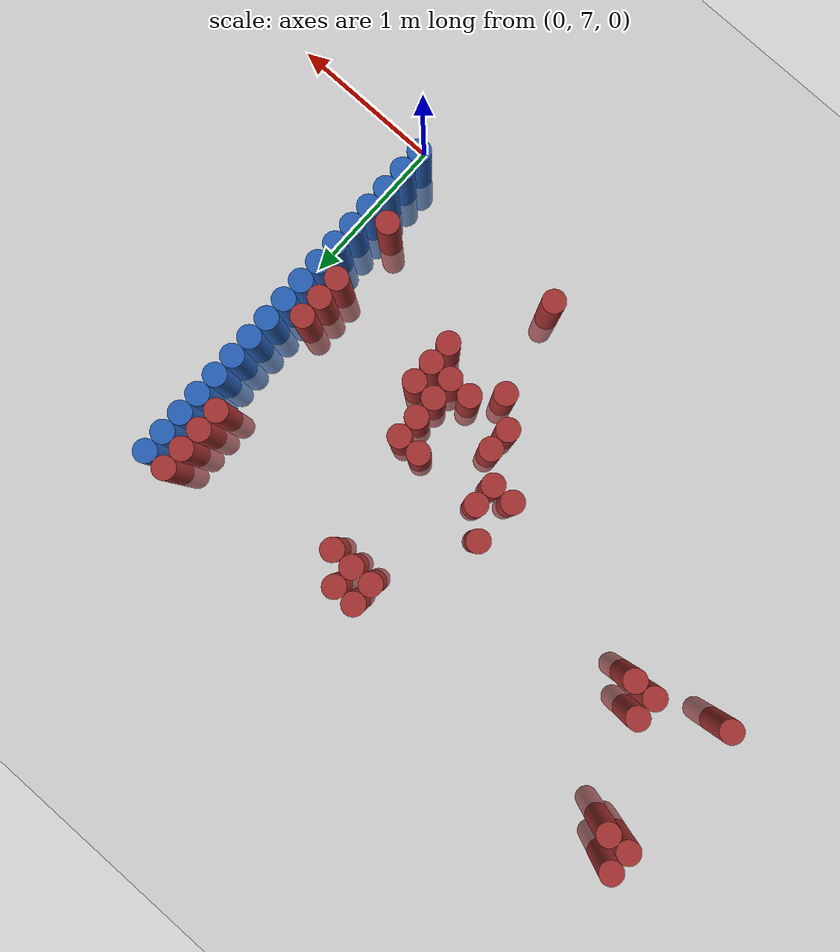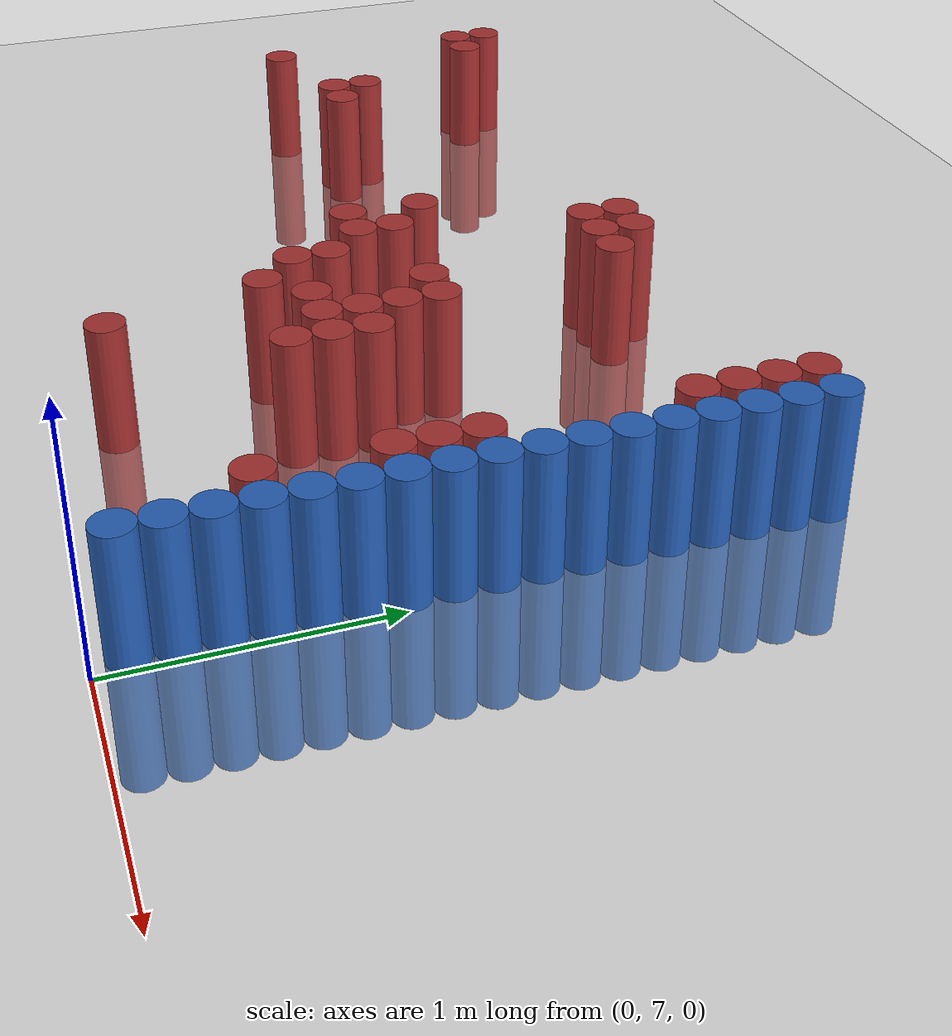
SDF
<sdf version="1.6">
 <world name="default">
  <model name="ground_plane">
   <static>1</static>
   <link name="link">
    <collision name="collision">
     <geometry><plane><normal>0 0 1</normal><size>100 100</size></plane></geometry>
     <surface><friction><ode><mu>100</mu><mu2>50</mu2></ode></friction></surface>
    </collision>
    <visual name="visual">
     <cast_shadows>0</cast_shadows>
     <geometry><plane><normal>0 0 1</normal><size>100 100</size></plane></geometry>
     <material>
      <script><uri>file://media/materials/scripts/gazebo.material</uri><name>Gazebo/Grey</name></script>
     </material>
    </visual>
   </link>
  </model>
  <model name="unit_cylinder_154">
   <static>1</static>
   <pose>-3.675000 8.475000 0.000000 0.000000 0.000000 0.000000</pose>
   <link name="link">
    <inertial>
     <mass>1</mass>
     <inertia><ixx>0.145833</ixx><ixy>0</ixy><ixz>0</ixz><iyy>0.145833</iyy><iyz>0</iyz><izz>0.125</izz></inertia>
    </inertial>
    <collision name="collision">
     <geometry><cylinder><radius>0.075000</radius><length>1</length></cylinder></geometry>
    </collision>
    <visual name="visual">
     <geometry><cylinder><radius>0.075000</radius><length>1</length></cylinder></geometry>
     <material>
      <ambient>0.648000 0.192000 0.192000 1</ambient>
      <diffuse>0.648000 0.192000 0.192000 1</diffuse>
     </material>
     <material>
      <script><name>Gazebo/Grey</name><uri>file://media/materials/scripts/gazebo.material</uri></script>
     </material>
    </visual>
   </link>
  </model>
  <model name="unit_cylinder_155">
   <static>1</static>
   <pose>-3.675000 9.375000 0.000000 0.000000 0.000000 0.000000</pose>
   <link name="link">
    <inertial>
     <mass>1</mass>
     <inertia><ixx>0.145833</ixx><ixy>0</ixy><ixz>0</ixz><iyy>0.145833</iyy><iyz>0</iyz><izz>0.125</izz></inertia>
    </inertial>
    <collision name="collision">
     <geometry><cylinder><radius>0.075000</radius><length>1</length></cylinder></geometry>
    </collision>
    <visual name="visual">
     <geometry><cylinder><radius>0.075000</radius><length>1</length></cylinder></geometry>
     <material>
      <ambient>0.648000 0.192000 0.192000 1</ambient>
      <diffuse>0.648000 0.192000 0.192000 1</diffuse>
     </material>
     <material>
      <script><name>Gazebo/Grey</name><uri>file://media/materials/scripts/gazebo.material</uri></script>
     </material>
    </visual>
   </link>
  </model>
  <model name="unit_cylinder_156">
   <static>1</static>
   <pose>-3.675000 9.525000 0.000000 0.000000 0.000000 0.000000</pose>
   <link name="link">
    <inertial>
     <mass>1</mass>
     <inertia><ixx>0.145833</ixx><ixy>0</ixy><ixz>0</ixz><iyy>0.145833</iyy><iyz>0</iyz><izz>0.125</izz></inertia>
    </inertial>
    <collision name="collision">
     <geometry><cylinder><radius>0.075000</radius><length>1</length></cylinder></geometry>
    </collision>
    <visual name="visual">
     <geometry><cylinder><radius>0.075000</radius><length>1</length></cylinder></geometry>
     <material>
      <ambient>0.648000 0.192000 0.192000 1</ambient>
      <diffuse>0.648000 0.192000 0.192000 1</diffuse>
     </material>
     <material>
      <script><name>Gazebo/Grey</name><uri>file://media/materials/scripts/gazebo.material</uri></script>
     </material>
    </visual>
   </link>
  </model>
  <model name="unit_cylinder_157">
   <static>1</static>
   <pose>-3.525000 9.375000 0.000000 0.000000 0.000000 0.000000</pose>
   <link name="link">
    <inertial>
     <mass>1</mass>
     <inertia><ixx>0.145833</ixx><ixy>0</ixy><ixz>0</ixz><iyy>0.145833</iyy><iyz>0</iyz><izz>0.125</izz></inertia>
    </inertial>
    <collision name="collision">
     <geometry><cylinder><radius>0.075000</radius><length>1</length></cylinder></geometry>
    </collision>
    <visual name="visual">
     <geometry><cylinder><radius>0.075000</radius><length>1</length></cylinder></geometry>
     <material>
      <ambient>0.648000 0.192000 0.192000 1</ambient>
      <diffuse>0.648000 0.192000 0.192000 1</diffuse>
     </material>
     <material>
      <script><name>Gazebo/Grey</name><uri>file://media/materials/scripts/gazebo.material</uri></script>
     </material>
    </visual>
   </link>
  </model>
  <model name="unit_cylinder_159">
   <static>1</static>
   <pose>-3.225000 8.625000 0.000000 0.000000 0.000000 0.000000</pose>
   <link name="link">
    <inertial>
     <mass>1</mass>
     <inertia><ixx>0.145833</ixx><ixy>0</ixy><ixz>0</ixz><iyy>0.145833</iyy><iyz>0</iyz><izz>0.125</izz></inertia>
    </inertial>
    <collision name="collision">
     <geometry><cylinder><radius>0.075000</radius><length>1</length></cylinder></geometry>
    </collision>
    <visual name="visual">
     <geometry><cylinder><radius>0.075000</radius><length>1</length></cylinder></geometry>
     <material>
      <ambient>0.648000 0.192000 0.192000 1</ambient>
      <diffuse>0.648000 0.192000 0.192000 1</diffuse>
     </material>
     <material>
      <script><name>Gazebo/Grey</name><uri>file://media/materials/scripts/gazebo.material</uri></script>
     </material>
    </visual>
   </link>
  </model>
  <model name="unit_cylinder_160">
   <static>1</static>
   <pose>-3.225000 8.775000 0.000000 0.000000 0.000000 0.000000</pose>
   <link name="link">
    <inertial>
     <mass>1</mass>
     <inertia><ixx>0.145833</ixx><ixy>0</ixy><ixz>0</ixz><iyy>0.145833</iyy><iyz>0</iyz><izz>0.125</izz></inertia>
    </inertial>
    <collision name="collision">
     <geometry><cylinder><radius>0.075000</radius><length>1</length></cylinder></geometry>
    </collision>
    <visual name="visual">
     <geometry><cylinder><radius>0.075000</radius><length>1</length></cylinder></geometry>
     <material>
      <ambient>0.648000 0.192000 0.192000 1</ambient>
      <diffuse>0.648000 0.192000 0.192000 1</diffuse>
     </material>
     <material>
      <script><name>Gazebo/Grey</name><uri>file://media/materials/scripts/gazebo.material</uri></script>
     </material>
    </visual>
   </link>
  </model>
  <model name="unit_cylinder_163">
   <static>1</static>
   <pose>-3.075000 8.625000 0.000000 0.000000 0.000000 0.000000</pose>
   <link name="link">
    <inertial>
     <mass>1</mass>
     <inertia><ixx>0.145833</ixx><ixy>0</ixy><ixz>0</ixz><iyy>0.145833</iyy><iyz>0</iyz><izz>0.125</izz></inertia>
    </inertial>
    <collision name="collision">
     <geometry><cylinder><radius>0.075000</radius><length>1</length></cylinder></geometry>
    </collision>
    <visual name="visual">
     <geometry><cylinder><radius>0.075000</radius><length>1</length></cylinder></geometry>
     <material>
      <ambient>0.648000 0.192000 0.192000 1</ambient>
      <diffuse>0.648000 0.192000 0.192000 1</diffuse>
     </material>
     <material>
      <script><name>Gazebo/Grey</name><uri>file://media/materials/scripts/gazebo.material</uri></script>
     </material>
    </visual>
   </link>
  </model>
  <model name="unit_cylinder_178">
   <static>1</static>
   <pose>-1.875000 8.325000 0.000000 0.000000 0.000000 0.000000</pose>
   <link name="link">
    <inertial>
     <mass>1</mass>
     <inertia><ixx>0.145833</ixx><ixy>0</ixy><ixz>0</ixz><iyy>0.145833</iyy><iyz>0</iyz><izz>0.125</izz></inertia>
    </inertial>
    <collision name="collision">
     <geometry><cylinder><radius>0.075000</radius><length>1</length></cylinder></geometry>
    </collision>
    <visual name="visual">
     <geometry><cylinder><radius>0.075000</radius><length>1</length></cylinder></geometry>
     <material>
      <ambient>0.648000 0.192000 0.192000 1</ambient>
      <diffuse>0.648000 0.192000 0.192000 1</diffuse>
     </material>
     <material>
      <script><name>Gazebo/Grey</name><uri>file://media/materials/scripts/gazebo.material</uri></script>
     </material>
    </visual>
   </link>
  </model>
  <model name="unit_cylinder_179">
   <static>1</static>
   <pose>-1.875000 8.625000 0.000000 0.000000 0.000000 0.000000</pose>
   <link name="link">
    <inertial>
     <mass>1</mass>
     <inertia><ixx>0.145833</ixx><ixy>0</ixy><ixz>0</ixz><iyy>0.145833</iyy><iyz>0</iyz><izz>0.125</izz></inertia>
    </inertial>
    <collision name="collision">
     <geometry><cylinder><radius>0.075000</radius><length>1</length></cylinder></geometry>
    </collision>
    <visual name="visual">
     <geometry><cylinder><radius>0.075000</radius><length>1</length></cylinder></geometry>
     <material>
      <ambient>0.648000 0.192000 0.192000 1</ambient>
      <diffuse>0.648000 0.192000 0.192000 1</diffuse>
     </material>
     <material>
      <script><name>Gazebo/Grey</name><uri>file://media/materials/scripts/gazebo.material</uri></script>
     </material>
    </visual>
   </link>
  </model>
  <model name="unit_cylinder_182">
   <static>1</static>
   <pose>-1.725000 8.325000 0.000000 0.000000 0.000000 0.000000</pose>
   <link name="link">
    <inertial>
     <mass>1</mass>
     <inertia><ixx>0.145833</ixx><ixy>0</ixy><ixz>0</ixz><iyy>0.145833</iyy><iyz>0</iyz><izz>0.125</izz></inertia>
    </inertial>
    <collision name="collision">
     <geometry><cylinder><radius>0.075000</radius><length>1</length></cylinder></geometry>
    </collision>
    <visual name="visual">
     <geometry><cylinder><radius>0.075000</radius><length>1</length></cylinder></geometry>
     <material>
      <ambient>0.648000 0.192000 0.192000 1</ambient>
      <diffuse>0.648000 0.192000 0.192000 1</diffuse>
     </material>
     <material>
      <script><name>Gazebo/Grey</name><uri>file://media/materials/scripts/gazebo.material</uri></script>
     </material>
    </visual>
   </link>
  </model>
  <model name="unit_cylinder_183">
   <static>1</static>
   <pose>-1.725000 8.475000 0.000000 0.000000 0.000000 0.000000</pose>
   <link name="link">
    <inertial>
     <mass>1</mass>
     <inertia><ixx>0.145833</ixx><ixy>0</ixy><ixz>0</ixz><iyy>0.145833</iyy><iyz>0</iyz><izz>0.125</izz></inertia>
    </inertial>
    <collision name="collision">
     <geometry><cylinder><radius>0.075000</radius><length>1</length></cylinder></geometry>
    </collision>
    <visual name="visual">
     <geometry><cylinder><radius>0.075000</radius><length>1</length></cylinder></geometry>
     <material>
      <ambient>0.648000 0.192000 0.192000 1</ambient>
      <diffuse>0.648000 0.192000 0.192000 1</diffuse>
     </material>
     <material>
      <script><name>Gazebo/Grey</name><uri>file://media/materials/scripts/gazebo.material</uri></script>
     </material>
    </visual>
   </link>
  </model>
  <model name="unit_cylinder_189">
   <static>1</static>
   <pose>-1.575000 8.025000 0.000000 0.000000 0.000000 0.000000</pose>
   <link name="link">
    <inertial>
     <mass>1</mass>
     <inertia><ixx>0.145833</ixx><ixy>0</ixy><ixz>0</ixz><iyy>0.145833</iyy><iyz>0</iyz><izz>0.125</izz></inertia>
    </inertial>
    <collision name="collision">
     <geometry><cylinder><radius>0.075000</radius><length>1</length></cylinder></geometry>
    </collision>
    <visual name="visual">
     <geometry><cylinder><radius>0.075000</radius><length>1</length></cylinder></geometry>
     <material>
      <ambient>0.648000 0.192000 0.192000 1</ambient>
      <diffuse>0.648000 0.192000 0.192000 1</diffuse>
     </material>
     <material>
      <script><name>Gazebo/Grey</name><uri>file://media/materials/scripts/gazebo.material</uri></script>
     </material>
    </visual>
   </link>
  </model>
  <model name="unit_cylinder_190">
   <static>1</static>
   <pose>-1.575000 8.175000 0.000000 0.000000 0.000000 0.000000</pose>
   <link name="link">
    <inertial>
     <mass>1</mass>
     <inertia><ixx>0.145833</ixx><ixy>0</ixy><ixz>0</ixz><iyy>0.145833</iyy><iyz>0</iyz><izz>0.125</izz></inertia>
    </inertial>
    <collision name="collision">
     <geometry><cylinder><radius>0.075000</radius><length>1</length></cylinder></geometry>
    </collision>
    <visual name="visual">
     <geometry><cylinder><radius>0.075000</radius><length>1</length></cylinder></geometry>
     <material>
      <ambient>0.648000 0.192000 0.192000 1</ambient>
      <diffuse>0.648000 0.192000 0.192000 1</diffuse>
     </material>
     <material>
      <script><name>Gazebo/Grey</name><uri>file://media/materials/scripts/gazebo.material</uri></script>
     </material>
    </visual>
   </link>
  </model>
  <model name="unit_cylinder_191">
   <static>1</static>
   <pose>-1.575000 9.225000 0.000000 0.000000 0.000000 0.000000</pose>
   <link name="link">
    <inertial>
     <mass>1</mass>
     <inertia><ixx>0.145833</ixx><ixy>0</ixy><ixz>0</ixz><iyy>0.145833</iyy><iyz>0</iyz><izz>0.125</izz></inertia>
    </inertial>
    <collision name="collision">
     <geometry><cylinder><radius>0.075000</radius><length>1</length></cylinder></geometry>
    </collision>
    <visual name="visual">
     <geometry><cylinder><radius>0.075000</radius><length>1</length></cylinder></geometry>
     <material>
      <ambient>0.648000 0.192000 0.192000 1</ambient>
      <diffuse>0.648000 0.192000 0.192000 1</diffuse>
     </material>
     <material>
      <script><name>Gazebo/Grey</name><uri>file://media/materials/scripts/gazebo.material</uri></script>
     </material>
    </visual>
   </link>
  </model>
  <model name="unit_cylinder_192">
   <static>1</static>
   <pose>-1.575000 9.375000 0.000000 0.000000 0.000000 0.000000</pose>
   <link name="link">
    <inertial>
     <mass>1</mass>
     <inertia><ixx>0.145833</ixx><ixy>0</ixy><ixz>0</ixz><iyy>0.145833</iyy><iyz>0</iyz><izz>0.125</izz></inertia>
    </inertial>
    <collision name="collision">
     <geometry><cylinder><radius>0.075000</radius><length>1</length></cylinder></geometry>
    </collision>
    <visual name="visual">
     <geometry><cylinder><radius>0.075000</radius><length>1</length></cylinder></geometry>
     <material>
      <ambient>0.648000 0.192000 0.192000 1</ambient>
      <diffuse>0.648000 0.192000 0.192000 1</diffuse>
     </material>
     <material>
      <script><name>Gazebo/Grey</name><uri>file://media/materials/scripts/gazebo.material</uri></script>
     </material>
    </visual>
   </link>
  </model>
  <model name="unit_cylinder_199">
   <static>1</static>
   <pose>-1.425000 7.875000 0.000000 0.000000 0.000000 0.000000</pose>
   <link name="link">
    <inertial>
     <mass>1</mass>
     <inertia><ixx>0.145833</ixx><ixy>0</ixy><ixz>0</ixz><iyy>0.145833</iyy><iyz>0</iyz><izz>0.125</izz></inertia>
    </inertial>
    <collision name="collision">
     <geometry><cylinder><radius>0.075000</radius><length>1</length></cylinder></geometry>
    </collision>
    <visual name="visual">
     <geometry><cylinder><radius>0.075000</radius><length>1</length></cylinder></geometry>
     <material>
      <ambient>0.648000 0.192000 0.192000 1</ambient>
      <diffuse>0.648000 0.192000 0.192000 1</diffuse>
     </material>
     <material>
      <script><name>Gazebo/Grey</name><uri>file://media/materials/scripts/gazebo.material</uri></script>
     </material>
    </visual>
   </link>
  </model>
  <model name="unit_cylinder_200">
   <static>1</static>
   <pose>-1.425000 9.225000 0.000000 0.000000 0.000000 0.000000</pose>
   <link name="link">
    <inertial>
     <mass>1</mass>
     <inertia><ixx>0.145833</ixx><ixy>0</ixy><ixz>0</ixz><iyy>0.145833</iyy><iyz>0</iyz><izz>0.125</izz></inertia>
    </inertial>
    <collision name="collision">
     <geometry><cylinder><radius>0.075000</radius><length>1</length></cylinder></geometry>
    </collision>
    <visual name="visual">
     <geometry><cylinder><radius>0.075000</radius><length>1</length></cylinder></geometry>
     <material>
      <ambient>0.648000 0.192000 0.192000 1</ambient>
      <diffuse>0.648000 0.192000 0.192000 1</diffuse>
     </material>
     <material>
      <script><name>Gazebo/Grey</name><uri>file://media/materials/scripts/gazebo.material</uri></script>
     </material>
    </visual>
   </link>
  </model>
  <model name="unit_cylinder_201">
   <static>1</static>
   <pose>-1.425000 9.375000 0.000000 0.000000 0.000000 0.000000</pose>
   <link name="link">
    <inertial>
     <mass>1</mass>
     <inertia><ixx>0.145833</ixx><ixy>0</ixy><ixz>0</ixz><iyy>0.145833</iyy><iyz>0</iyz><izz>0.125</izz></inertia>
    </inertial>
    <collision name="collision">
     <geometry><cylinder><radius>0.075000</radius><length>1</length></cylinder></geometry>
    </collision>
    <visual name="visual">
     <geometry><cylinder><radius>0.075000</radius><length>1</length></cylinder></geometry>
     <material>
      <ambient>0.648000 0.192000 0.192000 1</ambient>
      <diffuse>0.648000 0.192000 0.192000 1</diffuse>
     </material>
     <material>
      <script><name>Gazebo/Grey</name><uri>file://media/materials/scripts/gazebo.material</uri></script>
     </material>
    </visual>
   </link>
  </model>
  <model name="unit_cylinder_206">
   <static>1</static>
   <pose>-1.275000 7.275000 0.000000 0.000000 0.000000 0.000000</pose>
   <link name="link">
    <inertial>
     <mass>1</mass>
     <inertia><ixx>0.145833</ixx><ixy>0</ixy><ixz>0</ixz><iyy>0.145833</iyy><iyz>0</iyz><izz>0.125</izz></inertia>
    </inertial>
    <collision name="collision">
     <geometry><cylinder><radius>0.075000</radius><length>1</length></cylinder></geometry>
    </collision>
    <visual name="visual">
     <geometry><cylinder><radius>0.075000</radius><length>1</length></cylinder></geometry>
     <material>
      <ambient>0.648000 0.192000 0.192000 1</ambient>
      <diffuse>0.648000 0.192000 0.192000 1</diffuse>
     </material>
     <material>
      <script><name>Gazebo/Grey</name><uri>file://media/materials/scripts/gazebo.material</uri></script>
     </material>
    </visual>
   </link>
  </model>
  <model name="unit_cylinder_207">
   <static>1</static>
   <pose>-1.275000 8.025000 0.000000 0.000000 0.000000 0.000000</pose>
   <link name="link">
    <inertial>
     <mass>1</mass>
     <inertia><ixx>0.145833</ixx><ixy>0</ixy><ixz>0</ixz><iyy>0.145833</iyy><iyz>0</iyz><izz>0.125</izz></inertia>
    </inertial>
    <collision name="collision">
     <geometry><cylinder><radius>0.075000</radius><length>1</length></cylinder></geometry>
    </collision>
    <visual name="visual">
     <geometry><cylinder><radius>0.075000</radius><length>1</length></cylinder></geometry>
     <material>
      <ambient>0.648000 0.192000 0.192000 1</ambient>
      <diffuse>0.648000 0.192000 0.192000 1</diffuse>
     </material>
     <material>
      <script><name>Gazebo/Grey</name><uri>file://media/materials/scripts/gazebo.material</uri></script>
     </material>
    </visual>
   </link>
  </model>
  <model name="unit_cylinder_208">
   <static>1</static>
   <pose>-1.275000 8.475000 0.000000 0.000000 0.000000 0.000000</pose>
   <link name="link">
    <inertial>
     <mass>1</mass>
     <inertia><ixx>0.145833</ixx><ixy>0</ixy><ixz>0</ixz><iyy>0.145833</iyy><iyz>0</iyz><izz>0.125</izz></inertia>
    </inertial>
    <collision name="collision">
     <geometry><cylinder><radius>0.075000</radius><length>1</length></cylinder></geometry>
    </collision>
    <visual name="visual">
     <geometry><cylinder><radius>0.075000</radius><length>1</length></cylinder></geometry>
     <material>
      <ambient>0.648000 0.192000 0.192000 1</ambient>
      <diffuse>0.648000 0.192000 0.192000 1</diffuse>
     </material>
     <material>
      <script><name>Gazebo/Grey</name><uri>file://media/materials/scripts/gazebo.material</uri></script>
     </material>
    </visual>
   </link>
  </model>
  <model name="unit_cylinder_209">
   <static>1</static>
   <pose>-1.275000 9.225000 0.000000 0.000000 0.000000 0.000000</pose>
   <link name="link">
    <inertial>
     <mass>1</mass>
     <inertia><ixx>0.145833</ixx><ixy>0</ixy><ixz>0</ixz><iyy>0.145833</iyy><iyz>0</iyz><izz>0.125</izz></inertia>
    </inertial>
    <collision name="collision">
     <geometry><cylinder><radius>0.075000</radius><length>1</length></cylinder></geometry>
    </collision>
    <visual name="visual">
     <geometry><cylinder><radius>0.075000</radius><length>1</length></cylinder></geometry>
     <material>
      <ambient>0.648000 0.192000 0.192000 1</ambient>
      <diffuse>0.648000 0.192000 0.192000 1</diffuse>
     </material>
     <material>
      <script><name>Gazebo/Grey</name><uri>file://media/materials/scripts/gazebo.material</uri></script>
     </material>
    </visual>
   </link>
  </model>
  <model name="unit_cylinder_211">
   <static>1</static>
   <pose>-1.125000 8.025000 0.000000 0.000000 0.000000 0.000000</pose>
   <link name="link">
    <inertial>
     <mass>1</mass>
     <inertia><ixx>0.145833</ixx><ixy>0</ixy><ixz>0</ixz><iyy>0.145833</iyy><iyz>0</iyz><izz>0.125</izz></inertia>
    </inertial>
    <collision name="collision">
     <geometry><cylinder><radius>0.075000</radius><length>1</length></cylinder></geometry>
    </collision>
    <visual name="visual">
     <geometry><cylinder><radius>0.075000</radius><length>1</length></cylinder></geometry>
     <material>
      <ambient>0.648000 0.192000 0.192000 1</ambient>
      <diffuse>0.648000 0.192000 0.192000 1</diffuse>
     </material>
     <material>
      <script><name>Gazebo/Grey</name><uri>file://media/materials/scripts/gazebo.material</uri></script>
     </material>
    </visual>
   </link>
  </model>
  <model name="unit_cylinder_212">
   <static>1</static>
   <pose>-1.125000 8.175000 0.000000 0.000000 0.000000 0.000000</pose>
   <link name="link">
    <inertial>
     <mass>1</mass>
     <inertia><ixx>0.145833</ixx><ixy>0</ixy><ixz>0</ixz><iyy>0.145833</iyy><iyz>0</iyz><izz>0.125</izz></inertia>
    </inertial>
    <collision name="collision">
     <geometry><cylinder><radius>0.075000</radius><length>1</length></cylinder></geometry>
    </collision>
    <visual name="visual">
     <geometry><cylinder><radius>0.075000</radius><length>1</length></cylinder></geometry>
     <material>
      <ambient>0.648000 0.192000 0.192000 1</ambient>
      <diffuse>0.648000 0.192000 0.192000 1</diffuse>
     </material>
     <material>
      <script><name>Gazebo/Grey</name><uri>file://media/materials/scripts/gazebo.material</uri></script>
     </material>
    </visual>
   </link>
  </model>
  <model name="unit_cylinder_213">
   <static>1</static>
   <pose>-1.125000 8.325000 0.000000 0.000000 0.000000 0.000000</pose>
   <link name="link">
    <inertial>
     <mass>1</mass>
     <inertia><ixx>0.145833</ixx><ixy>0</ixy><ixz>0</ixz><iyy>0.145833</iyy><iyz>0</iyz><izz>0.125</izz></inertia>
    </inertial>
    <collision name="collision">
     <geometry><cylinder><radius>0.075000</radius><length>1</length></cylinder></geometry>
    </collision>
    <visual name="visual">
     <geometry><cylinder><radius>0.075000</radius><length>1</length></cylinder></geometry>
     <material>
      <ambient>0.648000 0.192000 0.192000 1</ambient>
      <diffuse>0.648000 0.192000 0.192000 1</diffuse>
     </material>
     <material>
      <script><name>Gazebo/Grey</name><uri>file://media/materials/scripts/gazebo.material</uri></script>
     </material>
    </visual>
   </link>
  </model>
  <model name="unit_cylinder_214">
   <static>1</static>
   <pose>-1.125000 8.475000 0.000000 0.000000 0.000000 0.000000</pose>
   <link name="link">
    <inertial>
     <mass>1</mass>
     <inertia><ixx>0.145833</ixx><ixy>0</ixy><ixz>0</ixz><iyy>0.145833</iyy><iyz>0</iyz><izz>0.125</izz></inertia>
    </inertial>
    <collision name="collision">
     <geometry><cylinder><radius>0.075000</radius><length>1</length></cylinder></geometry>
    </collision>
    <visual name="visual">
     <geometry><cylinder><radius>0.075000</radius><length>1</length></cylinder></geometry>
     <material>
      <ambient>0.648000 0.192000 0.192000 1</ambient>
      <diffuse>0.648000 0.192000 0.192000 1</diffuse>
     </material>
     <material>
      <script><name>Gazebo/Grey</name><uri>file://media/materials/scripts/gazebo.material</uri></script>
     </material>
    </visual>
   </link>
  </model>
  <model name="unit_cylinder_216">
   <static>1</static>
   <pose>-0.975000 7.875000 0.000000 0.000000 0.000000 0.000000</pose>
   <link name="link">
    <inertial>
     <mass>1</mass>
     <inertia><ixx>0.145833</ixx><ixy>0</ixy><ixz>0</ixz><iyy>0.145833</iyy><iyz>0</iyz><izz>0.125</izz></inertia>
    </inertial>
    <collision name="collision">
     <geometry><cylinder><radius>0.075000</radius><length>1</length></cylinder></geometry>
    </collision>
    <visual name="visual">
     <geometry><cylinder><radius>0.075000</radius><length>1</length></cylinder></geometry>
     <material>
      <ambient>0.648000 0.192000 0.192000 1</ambient>
      <diffuse>0.648000 0.192000 0.192000 1</diffuse>
     </material>
     <material>
      <script><name>Gazebo/Grey</name><uri>file://media/materials/scripts/gazebo.material</uri></script>
     </material>
    </visual>
   </link>
  </model>
  <model name="unit_cylinder_217">
   <static>1</static>
   <pose>-0.975000 8.025000 0.000000 0.000000 0.000000 0.000000</pose>
   <link name="link">
    <inertial>
     <mass>1</mass>
     <inertia><ixx>0.145833</ixx><ixy>0</ixy><ixz>0</ixz><iyy>0.145833</iyy><iyz>0</iyz><izz>0.125</izz></inertia>
    </inertial>
    <collision name="collision">
     <geometry><cylinder><radius>0.075000</radius><length>1</length></cylinder></geometry>
    </collision>
    <visual name="visual">
     <geometry><cylinder><radius>0.075000</radius><length>1</length></cylinder></geometry>
     <material>
      <ambient>0.648000 0.192000 0.192000 1</ambient>
      <diffuse>0.648000 0.192000 0.192000 1</diffuse>
     </material>
     <material>
      <script><name>Gazebo/Grey</name><uri>file://media/materials/scripts/gazebo.material</uri></script>
     </material>
    </visual>
   </link>
  </model>
  <model name="unit_cylinder_218">
   <static>1</static>
   <pose>-0.975000 8.175000 0.000000 0.000000 0.000000 0.000000</pose>
   <link name="link">
    <inertial>
     <mass>1</mass>
     <inertia><ixx>0.145833</ixx><ixy>0</ixy><ixz>0</ixz><iyy>0.145833</iyy><iyz>0</iyz><izz>0.125</izz></inertia>
    </inertial>
    <collision name="collision">
     <geometry><cylinder><radius>0.075000</radius><length>1</length></cylinder></geometry>
    </collision>
    <visual name="visual">
     <geometry><cylinder><radius>0.075000</radius><length>1</length></cylinder></geometry>
     <material>
      <ambient>0.648000 0.192000 0.192000 1</ambient>
      <diffuse>0.648000 0.192000 0.192000 1</diffuse>
     </material>
     <material>
      <script><name>Gazebo/Grey</name><uri>file://media/materials/scripts/gazebo.material</uri></script>
     </material>
    </visual>
   </link>
  </model>
  <model name="unit_cylinder_231">
   <static>1</static>
   <pose>-0.225000 7.575000 0.000000 0.000000 0.000000 0.000000</pose>
   <link name="link">
    <inertial>
     <mass>1</mass>
     <inertia><ixx>0.145833</ixx><ixy>0</ixy><ixz>0</ixz><iyy>0.145833</iyy><iyz>0</iyz><izz>0.125</izz></inertia>
    </inertial>
    <collision name="collision">
     <geometry><cylinder><radius>0.075000</radius><length>1</length></cylinder></geometry>
    </collision>
    <visual name="visual">
     <geometry><cylinder><radius>0.075000</radius><length>1</length></cylinder></geometry>
     <material>
      <ambient>0.648000 0.192000 0.192000 1</ambient>
      <diffuse>0.648000 0.192000 0.192000 1</diffuse>
     </material>
     <material>
      <script><name>Gazebo/Grey</name><uri>file://media/materials/scripts/gazebo.material</uri></script>
     </material>
    </visual>
   </link>
  </model>
  <model name="unit_cylinder_232">
   <static>1</static>
   <pose>-0.225000 8.025000 0.000000 0.000000 0.000000 0.000000</pose>
   <link name="link">
    <inertial>
     <mass>1</mass>
     <inertia><ixx>0.145833</ixx><ixy>0</ixy><ixz>0</ixz><iyy>0.145833</iyy><iyz>0</iyz><izz>0.125</izz></inertia>
    </inertial>
    <collision name="collision">
     <geometry><cylinder><radius>0.075000</radius><length>1</length></cylinder></geometry>
    </collision>
    <visual name="visual">
     <geometry><cylinder><radius>0.075000</radius><length>1</length></cylinder></geometry>
     <material>
      <ambient>0.648000 0.192000 0.192000 1</ambient>
      <diffuse>0.648000 0.192000 0.192000 1</diffuse>
     </material>
     <material>
      <script><name>Gazebo/Grey</name><uri>file://media/materials/scripts/gazebo.material</uri></script>
     </material>
    </visual>
   </link>
  </model>
  <model name="unit_cylinder_233">
   <static>1</static>
   <pose>-0.225000 8.175000 0.000000 0.000000 0.000000 0.000000</pose>
   <link name="link">
    <inertial>
     <mass>1</mass>
     <inertia><ixx>0.145833</ixx><ixy>0</ixy><ixz>0</ixz><iyy>0.145833</iyy><iyz>0</iyz><izz>0.125</izz></inertia>
    </inertial>
    <collision name="collision">
     <geometry><cylinder><radius>0.075000</radius><length>1</length></cylinder></geometry>
    </collision>
    <visual name="visual">
     <geometry><cylinder><radius>0.075000</radius><length>1</length></cylinder></geometry>
     <material>
      <ambient>0.648000 0.192000 0.192000 1</ambient>
      <diffuse>0.648000 0.192000 0.192000 1</diffuse>
     </material>
     <material>
      <script><name>Gazebo/Grey</name><uri>file://media/materials/scripts/gazebo.material</uri></script>
     </material>
    </visual>
   </link>
  </model>
  <model name="unit_cylinder_234">
   <static>1</static>
   <pose>-0.225000 8.325000 0.000000 0.000000 0.000000 0.000000</pose>
   <link name="link">
    <inertial>
     <mass>1</mass>
     <inertia><ixx>0.145833</ixx><ixy>0</ixy><ixz>0</ixz><iyy>0.145833</iyy><iyz>0</iyz><izz>0.125</izz></inertia>
    </inertial>
    <collision name="collision">
     <geometry><cylinder><radius>0.075000</radius><length>1</length></cylinder></geometry>
    </collision>
    <visual name="visual">
     <geometry><cylinder><radius>0.075000</radius><length>1</length></cylinder></geometry>
     <material>
      <ambient>0.648000 0.192000 0.192000 1</ambient>
      <diffuse>0.648000 0.192000 0.192000 1</diffuse>
     </material>
     <material>
      <script><name>Gazebo/Grey</name><uri>file://media/materials/scripts/gazebo.material</uri></script>
     </material>
    </visual>
   </link>
  </model>
  <model name="unit_cylinder_235">
   <static>1</static>
   <pose>-0.225000 9.075000 0.000000 0.000000 0.000000 0.000000</pose>
   <link name="link">
    <inertial>
     <mass>1</mass>
     <inertia><ixx>0.145833</ixx><ixy>0</ixy><ixz>0</ixz><iyy>0.145833</iyy><iyz>0</iyz><izz>0.125</izz></inertia>
    </inertial>
    <collision name="collision">
     <geometry><cylinder><radius>0.075000</radius><length>1</length></cylinder></geometry>
    </collision>
    <visual name="visual">
     <geometry><cylinder><radius>0.075000</radius><length>1</length></cylinder></geometry>
     <material>
      <ambient>0.648000 0.192000 0.192000 1</ambient>
      <diffuse>0.648000 0.192000 0.192000 1</diffuse>
     </material>
     <material>
      <script><name>Gazebo/Grey</name><uri>file://media/materials/scripts/gazebo.material</uri></script>
     </material>
    </visual>
   </link>
  </model>
  <model name="unit_cylinder_236">
   <static>1</static>
   <pose>-0.225000 9.225000 0.000000 0.000000 0.000000 0.000000</pose>
   <link name="link">
    <inertial>
     <mass>1</mass>
     <inertia><ixx>0.145833</ixx><ixy>0</ixy><ixz>0</ixz><iyy>0.145833</iyy><iyz>0</iyz><izz>0.125</izz></inertia>
    </inertial>
    <collision name="collision">
     <geometry><cylinder><radius>0.075000</radius><length>1</length></cylinder></geometry>
    </collision>
    <visual name="visual">
     <geometry><cylinder><radius>0.075000</radius><length>1</length></cylinder></geometry>
     <material>
      <ambient>0.648000 0.192000 0.192000 1</ambient>
      <diffuse>0.648000 0.192000 0.192000 1</diffuse>
     </material>
     <material>
      <script><name>Gazebo/Grey</name><uri>file://media/materials/scripts/gazebo.material</uri></script>
     </material>
    </visual>
   </link>
  </model>
  <model name="unit_cylinder_237">
   <static>1</static>
   <pose>-0.225000 9.375000 0.000000 0.000000 0.000000 0.000000</pose>
   <link name="link">
    <inertial>
     <mass>1</mass>
     <inertia><ixx>0.145833</ixx><ixy>0</ixy><ixz>0</ixz><iyy>0.145833</iyy><iyz>0</iyz><izz>0.125</izz></inertia>
    </inertial>
    <collision name="collision">
     <geometry><cylinder><radius>0.075000</radius><length>1</length></cylinder></geometry>
    </collision>
    <visual name="visual">
     <geometry><cylinder><radius>0.075000</radius><length>1</length></cylinder></geometry>
     <material>
      <ambient>0.648000 0.192000 0.192000 1</ambient>
      <diffuse>0.648000 0.192000 0.192000 1</diffuse>
     </material>
     <material>
      <script><name>Gazebo/Grey</name><uri>file://media/materials/scripts/gazebo.material</uri></script>
     </material>
    </visual>
   </link>
  </model>
  <model name="unit_cylinder_238">
   <static>1</static>
   <pose>-0.225000 9.525000 0.000000 0.000000 0.000000 0.000000</pose>
   <link name="link">
    <inertial>
     <mass>1</mass>
     <inertia><ixx>0.145833</ixx><ixy>0</ixy><ixz>0</ixz><iyy>0.145833</iyy><iyz>0</iyz><izz>0.125</izz></inertia>
    </inertial>
    <collision name="collision">
     <geometry><cylinder><radius>0.075000</radius><length>1</length></cylinder></geometry>
    </collision>
    <visual name="visual">
     <geometry><cylinder><radius>0.075000</radius><length>1</length></cylinder></geometry>
     <material>
      <ambient>0.648000 0.192000 0.192000 1</ambient>
      <diffuse>0.648000 0.192000 0.192000 1</diffuse>
     </material>
     <material>
      <script><name>Gazebo/Grey</name><uri>file://media/materials/scripts/gazebo.material</uri></script>
     </material>
    </visual>
   </link>
  </model>
  <model name="unit_cylinder_252">
   <static>1</static>
   <pose>-0.075000 7.125000 0.000000 0.000000 0.000000 0.000000</pose>
   <link name="link">
    <inertial>
     <mass>1</mass>
     <inertia><ixx>0.145833</ixx><ixy>0</ixy><ixz>0</ixz><iyy>0.145833</iyy><iyz>0</iyz><izz>0.125</izz></inertia>
    </inertial>
    <collision name="collision">
     <geometry><cylinder><radius>0.075000</radius><length>1</length></cylinder></geometry>
    </collision>
    <visual name="visual">
     <geometry><cylinder><radius>0.075000</radius><length>1</length></cylinder></geometry>
     <material>
      <ambient>0.152000 0.379000 0.720000 1</ambient>
      <diffuse>0.152000 0.379000 0.720000 1</diffuse>
     </material>
     <material>
      <script><name>Gazebo/Grey</name><uri>file://media/materials/scripts/gazebo.material</uri></script>
     </material>
    </visual>
   </link>
  </model>
  <model name="unit_cylinder_253">
   <static>1</static>
   <pose>-0.075000 7.275000 0.000000 0.000000 0.000000 0.000000</pose>
   <link name="link">
    <inertial>
     <mass>1</mass>
     <inertia><ixx>0.145833</ixx><ixy>0</ixy><ixz>0</ixz><iyy>0.145833</iyy><iyz>0</iyz><izz>0.125</izz></inertia>
    </inertial>
    <collision name="collision">
     <geometry><cylinder><radius>0.075000</radius><length>1</length></cylinder></geometry>
    </collision>
    <visual name="visual">
     <geometry><cylinder><radius>0.075000</radius><length>1</length></cylinder></geometry>
     <material>
      <ambient>0.152000 0.379000 0.720000 1</ambient>
      <diffuse>0.152000 0.379000 0.720000 1</diffuse>
     </material>
     <material>
      <script><name>Gazebo/Grey</name><uri>file://media/materials/scripts/gazebo.material</uri></script>
     </material>
    </visual>
   </link>
  </model>
  <model name="unit_cylinder_254">
   <static>1</static>
   <pose>-0.075000 7.425000 0.000000 0.000000 0.000000 0.000000</pose>
   <link name="link">
    <inertial>
     <mass>1</mass>
     <inertia><ixx>0.145833</ixx><ixy>0</ixy><ixz>0</ixz><iyy>0.145833</iyy><iyz>0</iyz><izz>0.125</izz></inertia>
    </inertial>
    <collision name="collision">
     <geometry><cylinder><radius>0.075000</radius><length>1</length></cylinder></geometry>
    </collision>
    <visual name="visual">
     <geometry><cylinder><radius>0.075000</radius><length>1</length></cylinder></geometry>
     <material>
      <ambient>0.152000 0.379000 0.720000 1</ambient>
      <diffuse>0.152000 0.379000 0.720000 1</diffuse>
     </material>
     <material>
      <script><name>Gazebo/Grey</name><uri>file://media/materials/scripts/gazebo.material</uri></script>
     </material>
    </visual>
   </link>
  </model>
  <model name="unit_cylinder_255">
   <static>1</static>
   <pose>-0.075000 7.575000 0.000000 0.000000 0.000000 0.000000</pose>
   <link name="link">
    <inertial>
     <mass>1</mass>
     <inertia><ixx>0.145833</ixx><ixy>0</ixy><ixz>0</ixz><iyy>0.145833</iyy><iyz>0</iyz><izz>0.125</izz></inertia>
    </inertial>
    <collision name="collision">
     <geometry><cylinder><radius>0.075000</radius><length>1</length></cylinder></geometry>
    </collision>
    <visual name="visual">
     <geometry><cylinder><radius>0.075000</radius><length>1</length></cylinder></geometry>
     <material>
      <ambient>0.152000 0.379000 0.720000 1</ambient>
      <diffuse>0.152000 0.379000 0.720000 1</diffuse>
     </material>
     <material>
      <script><name>Gazebo/Grey</name><uri>file://media/materials/scripts/gazebo.material</uri></script>
     </material>
    </visual>
   </link>
  </model>
  <model name="unit_cylinder_256">
   <static>1</static>
   <pose>-0.075000 7.725000 0.000000 0.000000 0.000000 0.000000</pose>
   <link name="link">
    <inertial>
     <mass>1</mass>
     <inertia><ixx>0.145833</ixx><ixy>0</ixy><ixz>0</ixz><iyy>0.145833</iyy><iyz>0</iyz><izz>0.125</izz></inertia>
    </inertial>
    <collision name="collision">
     <geometry><cylinder><radius>0.075000</radius><length>1</length></cylinder></geometry>
    </collision>
    <visual name="visual">
     <geometry><cylinder><radius>0.075000</radius><length>1</length></cylinder></geometry>
     <material>
      <ambient>0.152000 0.379000 0.720000 1</ambient>
      <diffuse>0.152000 0.379000 0.720000 1</diffuse>
     </material>
     <material>
      <script><name>Gazebo/Grey</name><uri>file://media/materials/scripts/gazebo.material</uri></script>
     </material>
    </visual>
   </link>
  </model>
  <model name="unit_cylinder_257">
   <static>1</static>
   <pose>-0.075000 7.875000 0.000000 0.000000 0.000000 0.000000</pose>
   <link name="link">
    <inertial>
     <mass>1</mass>
     <inertia><ixx>0.145833</ixx><ixy>0</ixy><ixz>0</ixz><iyy>0.145833</iyy><iyz>0</iyz><izz>0.125</izz></inertia>
    </inertial>
    <collision name="collision">
     <geometry><cylinder><radius>0.075000</radius><length>1</length></cylinder></geometry>
    </collision>
    <visual name="visual">
     <geometry><cylinder><radius>0.075000</radius><length>1</length></cylinder></geometry>
     <material>
      <ambient>0.152000 0.379000 0.720000 1</ambient>
      <diffuse>0.152000 0.379000 0.720000 1</diffuse>
     </material>
     <material>
      <script><name>Gazebo/Grey</name><uri>file://media/materials/scripts/gazebo.material</uri></script>
     </material>
    </visual>
   </link>
  </model>
  <model name="unit_cylinder_258">
   <static>1</static>
   <pose>-0.075000 8.025000 0.000000 0.000000 0.000000 0.000000</pose>
   <link name="link">
    <inertial>
     <mass>1</mass>
     <inertia><ixx>0.145833</ixx><ixy>0</ixy><ixz>0</ixz><iyy>0.145833</iyy><iyz>0</iyz><izz>0.125</izz></inertia>
    </inertial>
    <collision name="collision">
     <geometry><cylinder><radius>0.075000</radius><length>1</length></cylinder></geometry>
    </collision>
    <visual name="visual">
     <geometry><cylinder><radius>0.075000</radius><length>1</length></cylinder></geometry>
     <material>
      <ambient>0.152000 0.379000 0.720000 1</ambient>
      <diffuse>0.152000 0.379000 0.720000 1</diffuse>
     </material>
     <material>
      <script><name>Gazebo/Grey</name><uri>file://media/materials/scripts/gazebo.material</uri></script>
     </material>
    </visual>
   </link>
  </model>
  <model name="unit_cylinder_259">
   <static>1</static>
   <pose>-0.075000 8.175000 0.000000 0.000000 0.000000 0.000000</pose>
   <link name="link">
    <inertial>
     <mass>1</mass>
     <inertia><ixx>0.145833</ixx><ixy>0</ixy><ixz>0</ixz><iyy>0.145833</iyy><iyz>0</iyz><izz>0.125</izz></inertia>
    </inertial>
    <collision name="collision">
     <geometry><cylinder><radius>0.075000</radius><length>1</length></cylinder></geometry>
    </collision>
    <visual name="visual">
     <geometry><cylinder><radius>0.075000</radius><length>1</length></cylinder></geometry>
     <material>
      <ambient>0.152000 0.379000 0.720000 1</ambient>
      <diffuse>0.152000 0.379000 0.720000 1</diffuse>
     </material>
     <material>
      <script><name>Gazebo/Grey</name><uri>file://media/materials/scripts/gazebo.material</uri></script>
     </material>
    </visual>
   </link>
  </model>
  <model name="unit_cylinder_260">
   <static>1</static>
   <pose>-0.075000 8.325000 0.000000 0.000000 0.000000 0.000000</pose>
   <link name="link">
    <inertial>
     <mass>1</mass>
     <inertia><ixx>0.145833</ixx><ixy>0</ixy><ixz>0</ixz><iyy>0.145833</iyy><iyz>0</iyz><izz>0.125</izz></inertia>
    </inertial>
    <collision name="collision">
     <geometry><cylinder><radius>0.075000</radius><length>1</length></cylinder></geometry>
    </collision>
    <visual name="visual">
     <geometry><cylinder><radius>0.075000</radius><length>1</length></cylinder></geometry>
     <material>
      <ambient>0.152000 0.379000 0.720000 1</ambient>
      <diffuse>0.152000 0.379000 0.720000 1</diffuse>
     </material>
     <material>
      <script><name>Gazebo/Grey</name><uri>file://media/materials/scripts/gazebo.material</uri></script>
     </material>
    </visual>
   </link>
  </model>
  <model name="unit_cylinder_261">
   <static>1</static>
   <pose>-0.075000 8.475000 0.000000 0.000000 0.000000 0.000000</pose>
   <link name="link">
    <inertial>
     <mass>1</mass>
     <inertia><ixx>0.145833</ixx><ixy>0</ixy><ixz>0</ixz><iyy>0.145833</iyy><iyz>0</iyz><izz>0.125</izz></inertia>
    </inertial>
    <collision name="collision">
     <geometry><cylinder><radius>0.075000</radius><length>1</length></cylinder></geometry>
    </collision>
    <visual name="visual">
     <geometry><cylinder><radius>0.075000</radius><length>1</length></cylinder></geometry>
     <material>
      <ambient>0.152000 0.379000 0.720000 1</ambient>
      <diffuse>0.152000 0.379000 0.720000 1</diffuse>
     </material>
     <material>
      <script><name>Gazebo/Grey</name><uri>file://media/materials/scripts/gazebo.material</uri></script>
     </material>
    </visual>
   </link>
  </model>
  <model name="unit_cylinder_262">
   <static>1</static>
   <pose>-0.075000 8.625000 0.000000 0.000000 0.000000 0.000000</pose>
   <link name="link">
    <inertial>
     <mass>1</mass>
     <inertia><ixx>0.145833</ixx><ixy>0</ixy><ixz>0</ixz><iyy>0.145833</iyy><iyz>0</iyz><izz>0.125</izz></inertia>
    </inertial>
    <collision name="collision">
     <geometry><cylinder><radius>0.075000</radius><length>1</length></cylinder></geometry>
    </collision>
    <visual name="visual">
     <geometry><cylinder><radius>0.075000</radius><length>1</length></cylinder></geometry>
     <material>
      <ambient>0.152000 0.379000 0.720000 1</ambient>
      <diffuse>0.152000 0.379000 0.720000 1</diffuse>
     </material>
     <material>
      <script><name>Gazebo/Grey</name><uri>file://media/materials/scripts/gazebo.material</uri></script>
     </material>
    </visual>
   </link>
  </model>
  <model name="unit_cylinder_263">
   <static>1</static>
   <pose>-0.075000 8.775000 0.000000 0.000000 0.000000 0.000000</pose>
   <link name="link">
    <inertial>
     <mass>1</mass>
     <inertia><ixx>0.145833</ixx><ixy>0</ixy><ixz>0</ixz><iyy>0.145833</iyy><iyz>0</iyz><izz>0.125</izz></inertia>
    </inertial>
    <collision name="collision">
     <geometry><cylinder><radius>0.075000</radius><length>1</length></cylinder></geometry>
    </collision>
    <visual name="visual">
     <geometry><cylinder><radius>0.075000</radius><length>1</length></cylinder></geometry>
     <material>
      <ambient>0.152000 0.379000 0.720000 1</ambient>
      <diffuse>0.152000 0.379000 0.720000 1</diffuse>
     </material>
     <material>
      <script><name>Gazebo/Grey</name><uri>file://media/materials/scripts/gazebo.material</uri></script>
     </material>
    </visual>
   </link>
  </model>
  <model name="unit_cylinder_264">
   <static>1</static>
   <pose>-0.075000 8.925000 0.000000 0.000000 0.000000 0.000000</pose>
   <link name="link">
    <inertial>
     <mass>1</mass>
     <inertia><ixx>0.145833</ixx><ixy>0</ixy><ixz>0</ixz><iyy>0.145833</iyy><iyz>0</iyz><izz>0.125</izz></inertia>
    </inertial>
    <collision name="collision">
     <geometry><cylinder><radius>0.075000</radius><length>1</length></cylinder></geometry>
    </collision>
    <visual name="visual">
     <geometry><cylinder><radius>0.075000</radius><length>1</length></cylinder></geometry>
     <material>
      <ambient>0.152000 0.379000 0.720000 1</ambient>
      <diffuse>0.152000 0.379000 0.720000 1</diffuse>
     </material>
     <material>
      <script><name>Gazebo/Grey</name><uri>file://media/materials/scripts/gazebo.material</uri></script>
     </material>
    </visual>
   </link>
  </model>
  <model name="unit_cylinder_265">
   <static>1</static>
   <pose>-0.075000 9.075000 0.000000 0.000000 0.000000 0.000000</pose>
   <link name="link">
    <inertial>
     <mass>1</mass>
     <inertia><ixx>0.145833</ixx><ixy>0</ixy><ixz>0</ixz><iyy>0.145833</iyy><iyz>0</iyz><izz>0.125</izz></inertia>
    </inertial>
    <collision name="collision">
     <geometry><cylinder><radius>0.075000</radius><length>1</length></cylinder></geometry>
    </collision>
    <visual name="visual">
     <geometry><cylinder><radius>0.075000</radius><length>1</length></cylinder></geometry>
     <material>
      <ambient>0.152000 0.379000 0.720000 1</ambient>
      <diffuse>0.152000 0.379000 0.720000 1</diffuse>
     </material>
     <material>
      <script><name>Gazebo/Grey</name><uri>file://media/materials/scripts/gazebo.material</uri></script>
     </material>
    </visual>
   </link>
  </model>
  <model name="unit_cylinder_266">
   <static>1</static>
   <pose>-0.075000 9.225000 0.000000 0.000000 0.000000 0.000000</pose>
   <link name="link">
    <inertial>
     <mass>1</mass>
     <inertia><ixx>0.145833</ixx><ixy>0</ixy><ixz>0</ixz><iyy>0.145833</iyy><iyz>0</iyz><izz>0.125</izz></inertia>
    </inertial>
    <collision name="collision">
     <geometry><cylinder><radius>0.075000</radius><length>1</length></cylinder></geometry>
    </collision>
    <visual name="visual">
     <geometry><cylinder><radius>0.075000</radius><length>1</length></cylinder></geometry>
     <material>
      <ambient>0.152000 0.379000 0.720000 1</ambient>
      <diffuse>0.152000 0.379000 0.720000 1</diffuse>
     </material>
     <material>
      <script><name>Gazebo/Grey</name><uri>file://media/materials/scripts/gazebo.material</uri></script>
     </material>
    </visual>
   </link>
  </model>
  <model name="unit_cylinder_267">
   <static>1</static>
   <pose>-0.075000 9.375000 0.000000 0.000000 0.000000 0.000000</pose>
   <link name="link">
    <inertial>
     <mass>1</mass>
     <inertia><ixx>0.145833</ixx><ixy>0</ixy><ixz>0</ixz><iyy>0.145833</iyy><iyz>0</iyz><izz>0.125</izz></inertia>
    </inertial>
    <collision name="collision">
     <geometry><cylinder><radius>0.075000</radius><length>1</length></cylinder></geometry>
    </collision>
    <visual name="visual">
     <geometry><cylinder><radius>0.075000</radius><length>1</length></cylinder></geometry>
     <material>
      <ambient>0.152000 0.379000 0.720000 1</ambient>
      <diffuse>0.152000 0.379000 0.720000 1</diffuse>
     </material>
     <material>
      <script><name>Gazebo/Grey</name><uri>file://media/materials/scripts/gazebo.material</uri></script>
     </material>
    </visual>
   </link>
  </model>
  <model name="unit_cylinder_268">
   <static>1</static>
   <pose>-0.075000 9.525000 0.000000 0.000000 0.000000 0.000000</pose>
   <link name="link">
    <inertial>
     <mass>1</mass>
     <inertia><ixx>0.145833</ixx><ixy>0</ixy><ixz>0</ixz><iyy>0.145833</iyy><iyz>0</iyz><izz>0.125</izz></inertia>
    </inertial>
    <collision name="collision">
     <geometry><cylinder><radius>0.075000</radius><length>1</length></cylinder></geometry>
    </collision>
    <visual name="visual">
     <geometry><cylinder><radius>0.075000</radius><length>1</length></cylinder></geometry>
     <material>
      <ambient>0.152000 0.379000 0.720000 1</ambient>
      <diffuse>0.152000 0.379000 0.720000 1</diffuse>
     </material>
     <material>
      <script><name>Gazebo/Grey</name><uri>file://media/materials/scripts/gazebo.material</uri></script>
     </material>
    </visual>
   </link>
  </model>
 </world>
</sdf>
